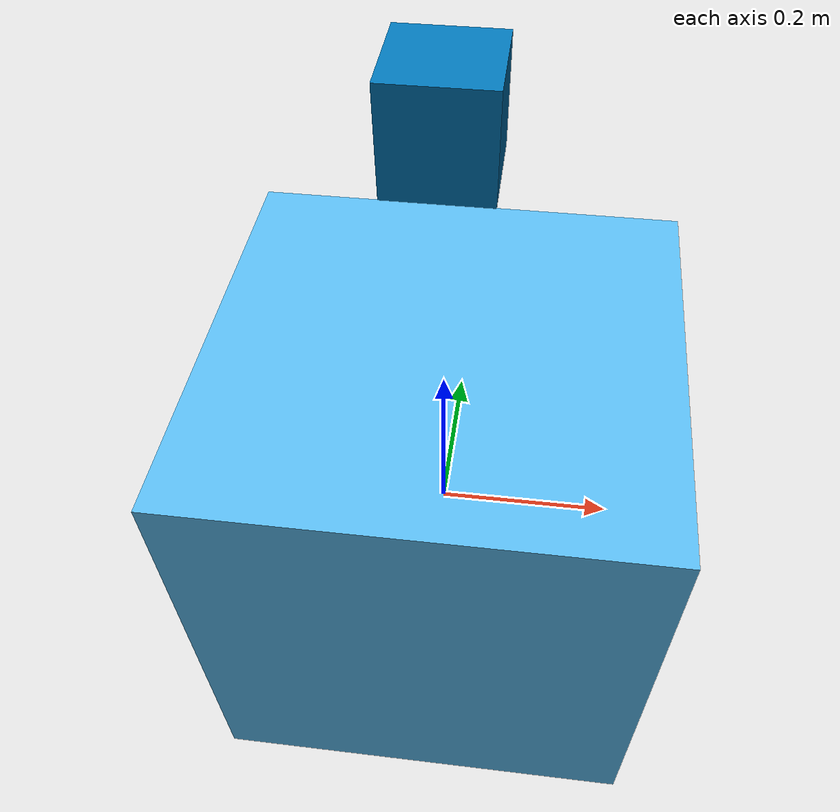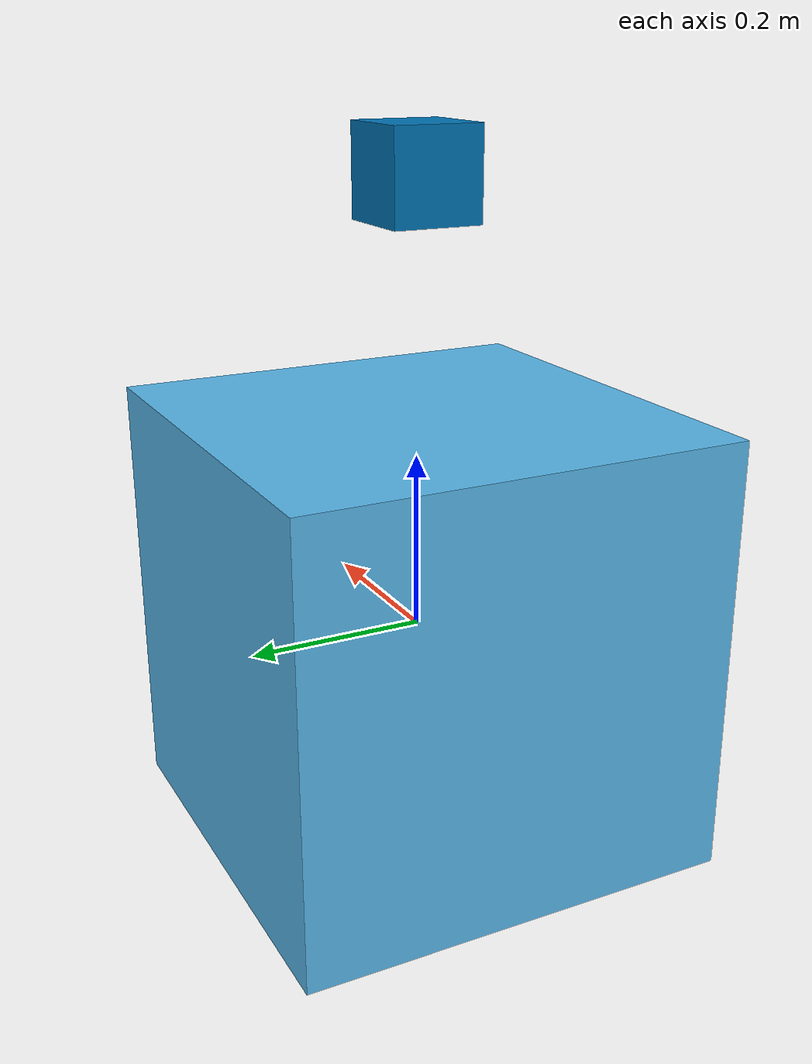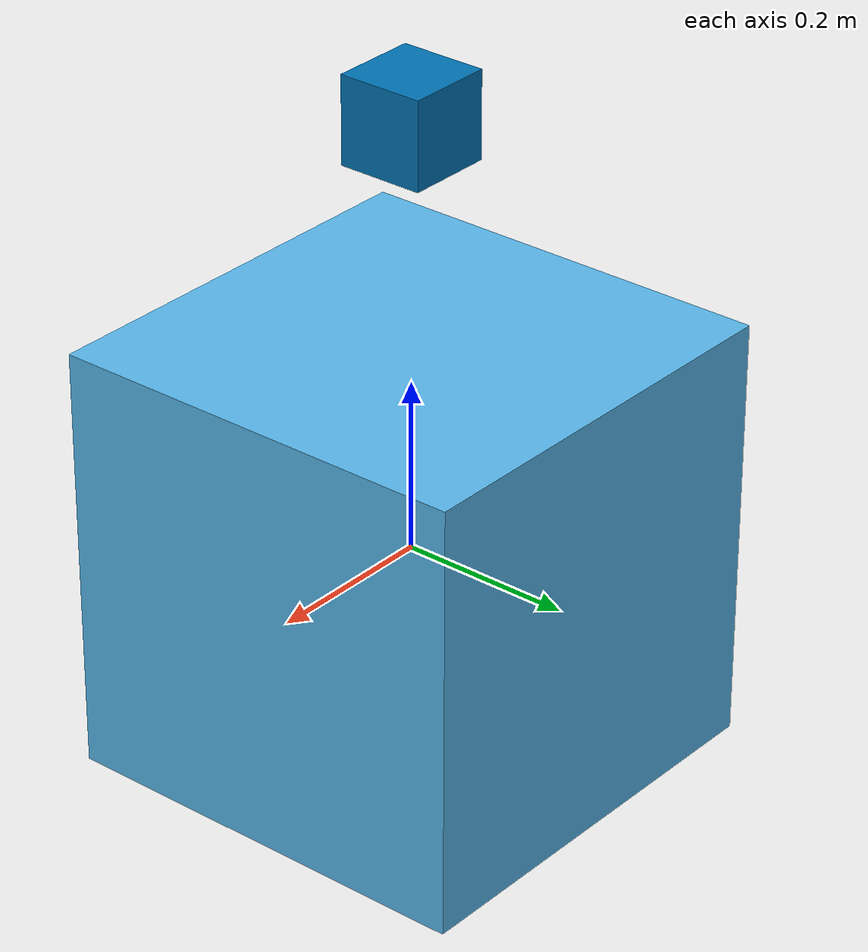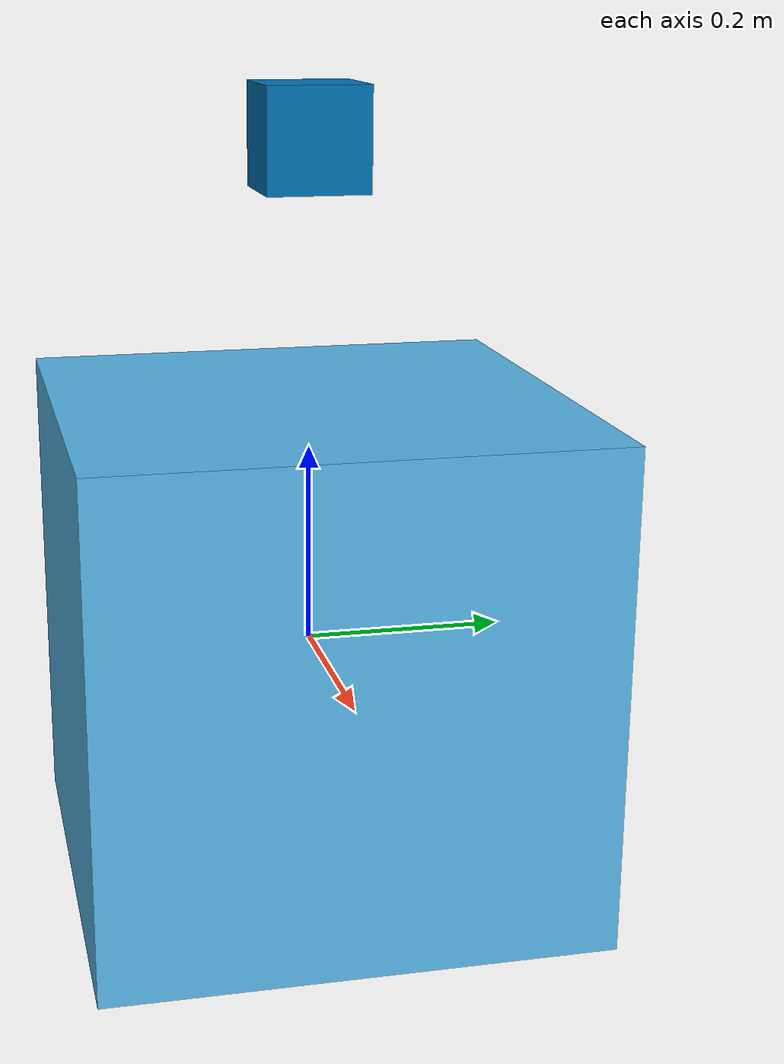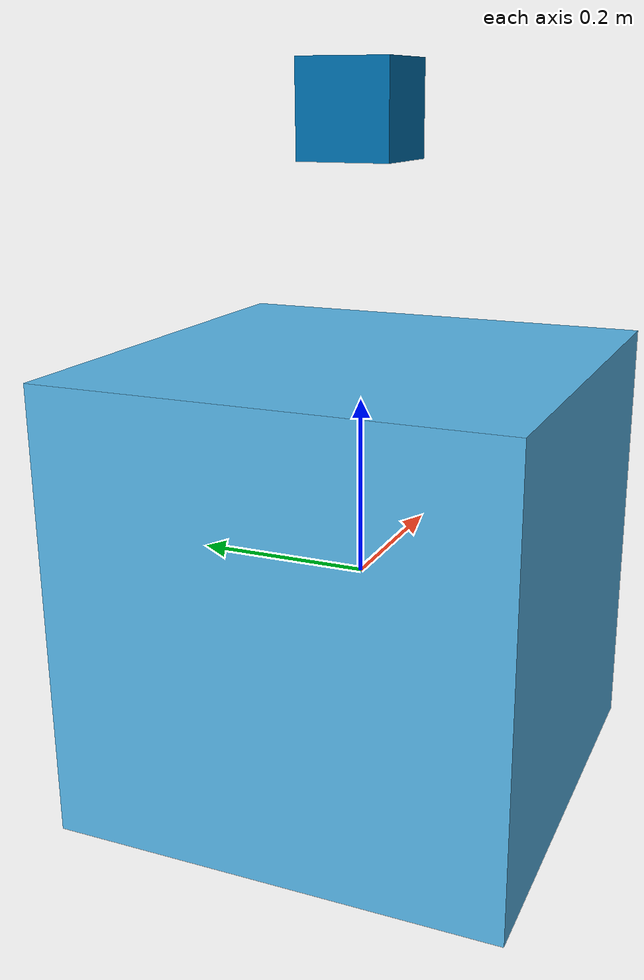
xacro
<?xml version="1.0"?>

<robot name="SAMPLE_phantom" xmlns:xacro="http://www.ros.org/wiki/xacro">

    <xacro:property name="mass" value="50" />
    <xacro:property name="width" value="0.5" />
    <xacro:property name="height" value="0.5" />

    <link name="base_footprint">
    <visual>
        <origin xyz="0 0 0" rpy="0 0 0" />
        <geometry>
        <box size="0.001 0.001 0.001" />
        </geometry>
    </visual>
    </link>

    <!-- Base Link -->
    <link name="base_link">
        <collision>
            <origin xyz="0 0 0.0" />
            <geometry>
                <box size="${width} ${width} ${height}"/>
            </geometry>
        </collision>

        <visual>
            <geometry>
                <box size="${width} ${width} ${height}"/>
            </geometry>
        </visual>

        <inertial>
            <mass value="${mass}" />
            <origin xyz="0 0 0.0" />
            <inertia ixx="${mass}" ixy="0.0" ixz="0.0"
                iyy="${mass}" iyz="0.0"
                izz="${mass}" />
        </inertial>
    </link>

    <link name="left_wheel">
        <collision name="collision">
            <origin xyz="0 0 0" rpy="0 1.5708 1.5708" />
            <geometry>
                <cylinder length="0.05" radius="0.1"/>
            </geometry>
        </collision>

        <visual name="visual">
            <origin xyz="0 0 0" rpy="0 1.5708 1.5708" />
            <geometry>
                <cylinder length="0.05" radius="0.1"/>
            </geometry>
        </visual>

        <inertial>
            <mass value="1"/>
            <inertia
                ixx="0.002708" ixy="0.0" ixz="0.0"
                iyy="0.002708" iyz="0.0"
                izz="0.005"/>
        </inertial>
    </link>

    <link name="right_wheel">
        <collision name="collision">
            <origin xyz="0 0 0" rpy="0 1.5708 1.5708" />
            <geometry>
                <cylinder length="0.05" radius="0.1"/>
            </geometry>
        </collision>

        <visual name="visual">
            <origin xyz="0 0 0" rpy="0 1.5708 1.5708" />
            <geometry>
                <cylinder length="0.05" radius="0.1"/>
            </geometry>
        </visual>

        <inertial>
            <mass value="1"/>
            <inertia
                ixx="0.002708" ixy="0.0" ixz="0.0"
                iyy="0.002708" iyz="0.0"
                izz="0.005"/>
            </inertial>
    </link>

    <!-- RPLIDAR A1 -->
	<link name="base_laser">
		<collision>
			<origin xyz="0 0 0" rpy="0 0 0"/>
			<geometry>
				<box size="0.1 0.1 0.1"/>
			</geometry>
		</collision>

		<visual>
			<origin xyz="0 0 0" rpy="0 0 0"/>
			<geometry>
				<box size="0.1 0.1 0.1"/>
			</geometry>
		</visual>

		<inertial>
			<mass value="1e-5"/>
			<origin xyz="0 0 0" rpy="0 0 0"/>
			<inertia ixx="1e-6" ixy="0" ixz="0" iyy="1e-6" iyz="0" izz="1e-6"/>
		</inertial>
	</link>

    <!-- Joint -->
    <joint name="base_link_joint" type="fixed">
        <origin xyz="0.0 0 0.0" rpy="0 0 0" />
        <parent link="base_footprint"/>
        <child link="base_link" />
    </joint>

    <joint name="laser_joint" type="fixed">
        <axis xyz="0 1 0"/>
        <origin xyz="0 0 ${height + 0.002}" rpy="0 0 0"/>
        <parent link="base_link"/>
        <child link="base_laser"/>
    </joint>

    <joint name="base_link_left_wheel_joint" type="continuous">
        <parent link="base_link" />
        <child link="left_wheel" />
        <origin xyz="0 -0.175 0.1" rpy="0 0 0"/>
    </joint>

    <joint name="base_link_right_wheel_joint" type="continuous">
        <parent link="base_link" />
        <child link="right_wheel" />
        <origin xyz="0 0.175 0.1" rpy="0 0 0"/>
    </joint>

</robot>
